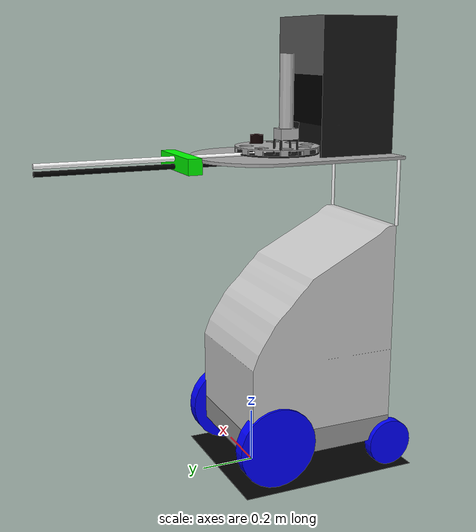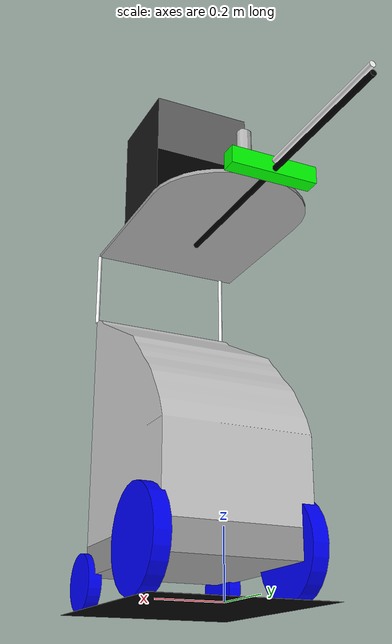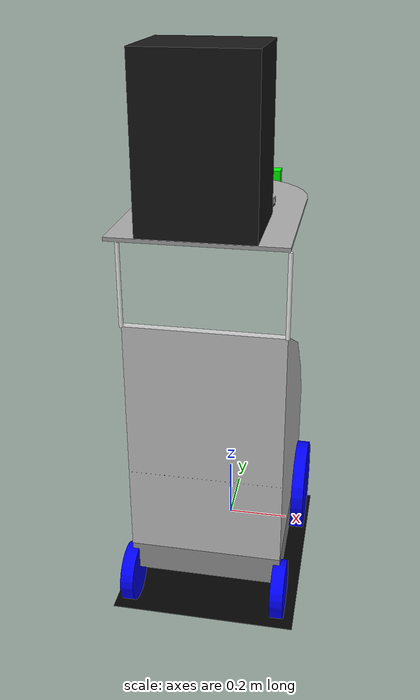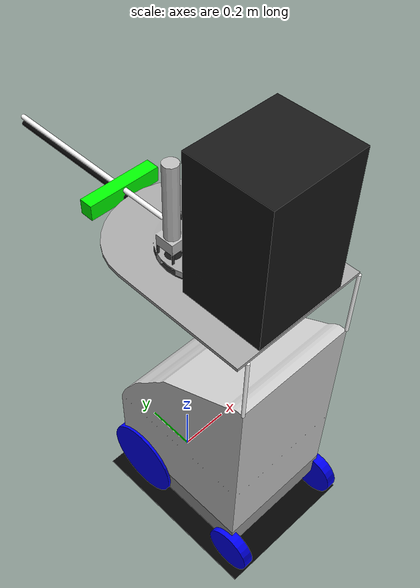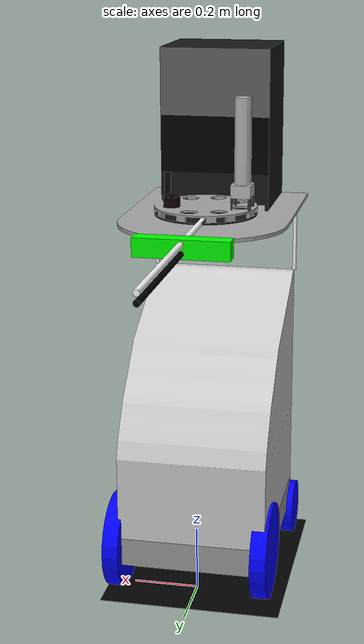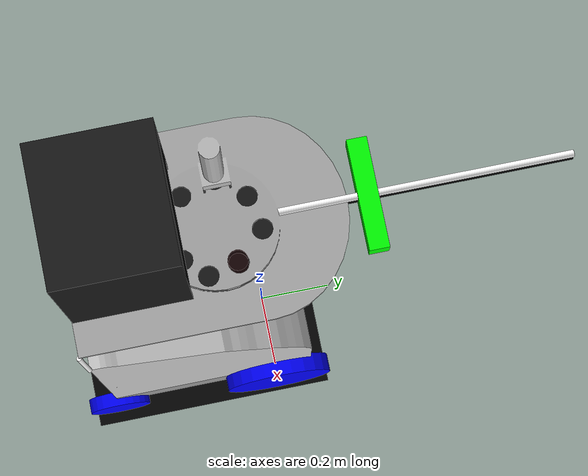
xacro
<?xml version="1.0"?>
<robot name="cobot_navigation" xmlns:xacro="http://ros.org/wiki/xacro">

 <xacro:include filename="$(find cobot_description)/urdf/cobot_library.urdf.xacro" />
 <xacro:include filename="$(find cobot_description)/urdf/constants.urdf.xacro" />

 <cobot_base />
 <cobot_body parent_link="platform_link" platform_height="${platform_height}"/>
 <cobot_top parent_link="frame_right_top_link" height_offset="${frame_top_length}" />

 <kinect parent_link="top_link" parent_x="-0.25 " parent_y="0.75" parent_z="0" parent_ox="${pi/2.0}" parent_oy="${pi/2.0}" parent_oz="${pi/2.0}" />

</robot>

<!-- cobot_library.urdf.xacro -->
<!--
  Library, this includes all 'loose' urdf and xacro files of cobot.
 -->
<robot name="library" xmlns:xacro="http://ros.org/wiki/xacro">

  <!-- Materials -->
  <xacro:include filename="$(find cobot_description)/urdf/materials/materials.urdf.xacro"/>

  <!-- Platform -->
  <xacro:include filename="$(find cobot_description)/urdf/platform/base.urdf.xacro"/>
  <xacro:include filename="$(find cobot_description)/urdf/platform/body.urdf.xacro"/>
  <xacro:include filename="$(find cobot_description)/urdf/platform/top.urdf.xacro"/>

  <!-- Sensors -->

  <xacro:include filename="$(find cobot_description)/urdf/sensors/kinect.urdf.xacro"/>

</robot>

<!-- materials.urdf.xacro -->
<!--
  Defines all the materials used
 -->
<robot name="xacro_materials" xmlns:xacro="http://ros.org/wiki/xacro">

  <material name="white">
    <color rgba="1 1 1 1"/>
  </material>

  <material name="grey">
    <color rgba="0.5 0.5 0.5 1"/>
  </material>

  <material name="light_grey">
    <color rgba="0.6 0.6 0.6 1"/>
  </material>

  <material name="dark_grey">
    <color rgba="0.3 0.3 0.3 1"/>
  </material>

  <material name="black">
    <color rgba="0.01 0.01 0.01 1"/>
  </material>

  <material name="red">
    <color rgba="1 0 0 1"/>
  </material>

  <material name="blue">
    <color rgba="0 0 1 1"/>
  </material>

  <material name="green">
    <color rgba="0 1 0 1"/>
  </material>

</robot>

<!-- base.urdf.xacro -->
<robot name="cobot_base"  xmlns:xacro="http://ros.org/wiki/xacro">

<!-- Combined macro's -->
  <xacro:macro name="cobot_base">

    <xacro:base_platform />
    <xacro:powered_wheel parent_link="base_link" side="left" mirror="-1" />
    <xacro:powered_wheel parent_link="base_link" side="right" mirror="1" />
    <xacro:caster_wheel parent_link="base_link" side="left" mirror="-1" />
    <xacro:caster_wheel parent_link="base_link" side="right" mirror="1" />

  </xacro:macro>

  <xacro:include filename="$(find cobot_description)/urdf/constants.urdf.xacro" />

  <xacro:property name="platform_length" value="0.57" />
  <xacro:property name="platform_width" value="0.46" />
  <xacro:property name="platform_height" value="0.09" />

  <xacro:property name="center_wheel_axis_to_front_platform_distance" value="0.1" />

  <xacro:property name="powered_wheel_diameter" value="0.3" />
  <xacro:property name="powered_wheel_thickness" value="0.05" />
  <xacro:property name="powered_wheel_spacing" value="0.015" />

  <xacro:property name="caster_wheel_diameter" value="0.175" />
  <xacro:property name="caster_wheel_thickness" value="0.04" />

    <xacro:macro name="powered_wheel" params="parent_link side mirror">
      <link name="powered_${side}_wheel_link">
        <visual>
          <origin xyz="0 0 0" rpy="${pi/2} 0 ${pi/2}" />
          <geometry>
            <cylinder radius="${powered_wheel_diameter/2.0}" length="${powered_wheel_thickness}"/>
          </geometry>
          <material name="blue" />
        </visual>
      </link>
    <xacro:powered_wheel_joint parent_link="${parent_link}" side="${side}" mirror="${mirror}" />
    </xacro:macro>

    <xacro:macro name="powered_wheel_joint" params="parent_link side mirror">
      <joint name="powered_${side}_wheel_joint" type="fixed">
        <parent link="${parent_link}"/>
        <child link="powered_${side}_wheel_link"/>
        <origin xyz="${(platform_width/2.0)*mirror+powered_wheel_spacing} 0 0" rpy="0 0 0"/>
      </joint>
    </xacro:macro>

    <xacro:macro name="caster_wheel" params="parent_link side mirror">
      <link name="caster_${side}_wheel_link">
        <visual>
          <origin xyz="0 0 0" rpy="${pi/2} 0 ${pi/2}" />
          <geometry>
            <cylinder radius="${caster_wheel_diameter/2.0}" length="${caster_wheel_thickness}"/>
          </geometry>
          <material name="blue" />
        </visual>
      </link>
    <xacro:caster_wheel_joint parent_link="${parent_link}" side="${side}" mirror="${mirror}" />
    </xacro:macro>

    <xacro:macro name="caster_wheel_joint" params="parent_link side mirror">
      <joint name="caster_${side}_wheel_joint" type="fixed">
        <parent link="${parent_link}"/>
        <child link="caster_${side}_wheel_link"/>
        <origin xyz="${(platform_width/2.0)*mirror} ${-platform_length+center_wheel_axis_to_front_platform_distance} -${(powered_wheel_diameter/2.0)-(caster_wheel_diameter/2.0)}" rpy="0 0 0"/>
      </joint>
    </xacro:macro>

  <xacro:macro name="base_platform">

    <!-- footprint lies on the ground -->
    <link name="base_footprint">
      <visual>
      <origin xyz="0 -0.2 0" rpy="0 0 0" />
        <geometry>
          <box size="${platform_width + powered_wheel_thickness*2} ${platform_length + powered_wheel_diameter/4.0 + caster_wheel_diameter/4.0} 0.001" />
        </geometry>
          <material name="black" />
      </visual>
    </link>

    <link name="base_link">
      <visual>
      <origin xyz="0 0 0" rpy="0 0 0" />
        <geometry>
          <box size="${platform_width} .02 0.01" />
        </geometry>
      </visual>
    </link>

    <link name="platform_link">
      <visual>
      <origin xyz="-${platform_width/2.0} ${platform_length/2.0} 0" rpy="0 0 0" />
        <geometry>
          <box size="${platform_width} ${platform_length} ${platform_height}" />
        </geometry>
          <material name="light_grey" />
      </visual>
    </link>

    <joint name="base_joint" type="fixed">
      <parent link="base_footprint" />
      <child link="base_link" />
      <origin xyz="0 0 0.15" rpy="0 0 0" />
    </joint>

    <joint name="platform_joint" type="fixed">
      <parent link="base_link" />
      <child link="platform_link" />
      <origin xyz="${platform_width/2.0} ${-platform_length+center_wheel_axis_to_front_platform_distance} 0" rpy="0 0 0" />
    </joint>

  </xacro:macro>

</robot>

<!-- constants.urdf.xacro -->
<!--
  Some handy constants
 -->
<robot name="constants" xmlns:xacro="http://ros.org/wiki/xacro">

  <xacro:property name="pi" value="3.1415" />

</robot>

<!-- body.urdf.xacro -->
<robot name="cobot_body" xmlns:xacro="http://ros.org/wiki/xacro">

  <xacro:macro name="cobot_body" params="parent_link platform_height" >

    <xacro:body />
    <xacro:frame_top parent_link="body_link" side="left" from_body="-0.46" />
    <xacro:frame_top parent_link="body_link" side="right" from_body="0" />

  </xacro:macro>

  <xacro:include filename="$(find cobot_description)/urdf/constants.urdf.xacro" />

  <xacro:property name="frame_top_length" value="0.245" />
  <xacro:property name="frame_top_diameter" value="0.012" />

  <!-- taken from mesh file -->
  <xacro:property name="body_height" value="0.74" />

  <xacro:macro name="frame_top" params="parent_link side from_body">
    <link name="frame_${side}_top_link">
     <visual>
     <origin xyz="0 0 ${frame_top_length/2.0}" rpy="0 0 0" />
      <geometry>
        <cylinder radius="${frame_top_diameter/2.0}" length="${frame_top_length}" />
      </geometry>
      <material name="white" />
    </visual>
    </link>

    <joint name="frame_${side}_top_joint" type="fixed">
      <parent link="${parent_link}" />
      <child link="frame_${side}_top_link" />
      <origin xyz="${from_body} 0 ${body_height}" rpy="0 0 0" />
    </joint>
  </xacro:macro>

  <xacro:macro name="body" param="parent_link ,platform_height">
   <link name="body_link">
      <visual>
      <origin xyz="0 0 0" rpy="0 0 ${pi/2}" />
       <geometry>
         <mesh filename="package://cobot_description/meshes/dae/body.dae" />
       </geometry>
     </visual>
   </link>

   <joint name="body_joint" type="fixed">
      <parent link="${parent_link}" />
      <child link="body_link" />
      <origin xyz="0 0 ${platform_height/2.0}" rpy="0 0 0" />
    </joint>

  </xacro:macro>

</robot>

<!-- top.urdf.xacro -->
<robot name="mesh" xmlns:xacro="http://ros.org/wiki/xacro">

  <xacro:macro name="cobot_top" params="parent_link height_offset" >

    <xacro:top parent_link="${parent_link}" height_offset="${height_offset}"/>

  </xacro:macro>

  <xacro:include filename="$(find cobot_description)/urdf/constants.urdf.xacro" />

  <xacro:macro name="top" params="parent_link height_offset">
    <link name="top_link">
       <visual>
       <origin xyz="0 0 0" rpy="0 0 ${pi/2.0}" />
        <geometry>
          <mesh filename="package://cobot_description/meshes/dae/top.dae" />
        </geometry>
      </visual>
    </link>

    <joint name="top_joint" type="fixed">
      <parent link="${parent_link}" />
      <child link="top_link" />
      <origin xyz="0 0 ${height_offset}" rpy="0 0 0" />
    </joint>
  </xacro:macro>

</robot>

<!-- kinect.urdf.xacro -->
<robot name="kinect" xmlns:xacro="http://ros.org/wiki/xacro">

  <xacro:include filename="$(find cobot_description)/urdf/constants.urdf.xacro" />

  <xacro:property name="kinect_length" value="0.275" />
  <xacro:property name="kinect_width" value="0.05" />
  <xacro:property name="kinect_height" value="0.055" />

  <xacro:property name="kinect_diameter_lens" value="0.018" />

<xacro:macro name="kinect" params="parent_link parent_x parent_y parent_z parent_ox parent_oy parent_oz">

  <link name="kinect_base_link">
     <visual>
     <origin xyz="0 0 0" rpy="${parent_ox} ${parent_oy} ${parent_oz}" />
      <geometry>
        <box size="${kinect_length} ${kinect_width} ${kinect_height}" />
      </geometry>
     <material name="green" />
    </visual>
  </link>

  <link name="kinect_ir_sensor_link">
     <visual>
     <origin xyz="0 0 0" rpy="${parent_ox + pi/2.0} ${parent_oy} ${parent_oz}" />
      <geometry>
        <cylinder radius="${kinect_diameter_lens/2.0}" length="1.01" />
      </geometry>
     <material name="white"/>
    </visual>
  </link>

  <link name="kinect_rgb_sensor_link">
     <visual>
     <origin xyz="0 0 0" rpy="${parent_ox + pi/2.0} ${parent_oy} ${parent_oz}" />
      <geometry>
        <cylinder radius="${kinect_diameter_lens/2.0}" length="1.01" />
      </geometry>
     <material name="black"/>
    </visual>
  </link>

  <joint name="kinect_base_top_joint" type="fixed">
    <parent link="${parent_link}" />
    <child link="kinect_base_link" />
    <origin xyz="${parent_x} ${parent_y} ${parent_z}" rpy="${parent_ox} ${parent_oy} ${parent_oz}" />
  </joint>

  <joint name="kinect_ir_sensor_kinect_base_joint" type="fixed">
    <parent link="kinect_base_link" />
    <child link="kinect_ir_sensor_link" />
    <origin xyz="-0.013 0 0" rpy="0 0 0" />
  </joint>

  <joint name="kinect_rgb_sensor_kinect_base_joint" type="fixed">
    <parent link="kinect_base_link" />
    <child link="kinect_rgb_sensor_link" />
    <origin xyz="0.013 0 0" rpy="0 0 0" />
  </joint>

</xacro:macro>

</robot>
